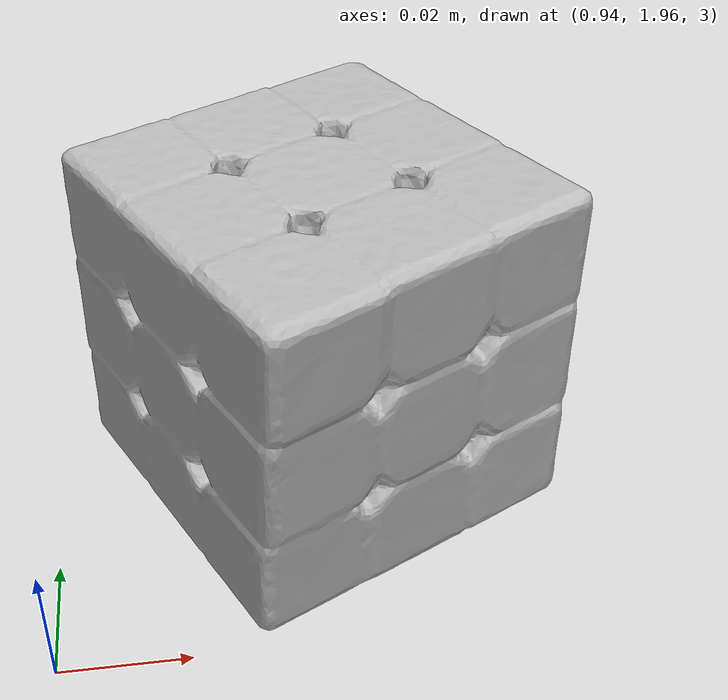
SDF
<?xml version="1.0" ?>
<sdf version="1.7">
<!--
This SDF file was automatically generated using a template modified
and authored by Adwait Naik. The moment of interia is not supposed to be changed.
-->
    <model name="rubiks_cube">
      <pose>1.0 2.0 3.0 0 0 0</pose>
      <link name="link">
        <inertial>
          <inertia>
           <ixx>9.85204038073643e-08</ixx>
           <ixy>-8.061824208102976e-24</ixy>
           <ixz>2.097640522420731e-24</ixz>
           <iyy>9.833577391876143e-08</iyy>
           <iyz>-2.1321925661475815e-23</iyz>
           <izz>9.818197457535545e-08</izz>
          </inertia>
          <mass>0.00018287731685751214</mass>
        </inertial>
        <collision name="collision">
          <geometry>
          	<mesh>
             <uri>textured.dae</uri>
            </mesh>
          </geometry>
        </collision>

        <visual name="visual">
          <geometry>
          	<mesh>
            <uri>textured.dae</uri>
	        </mesh>
          </geometry>
        </visual>
      </link>
    </model>
</sdf>
